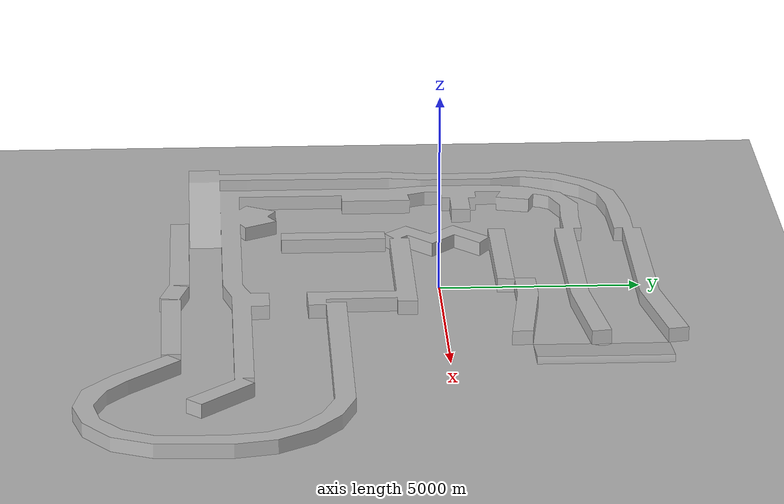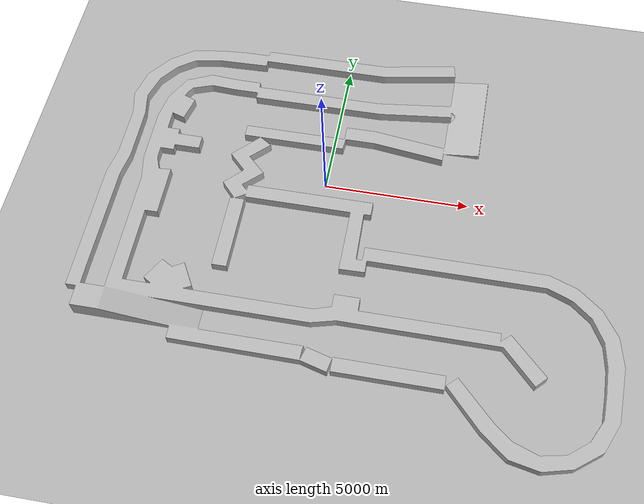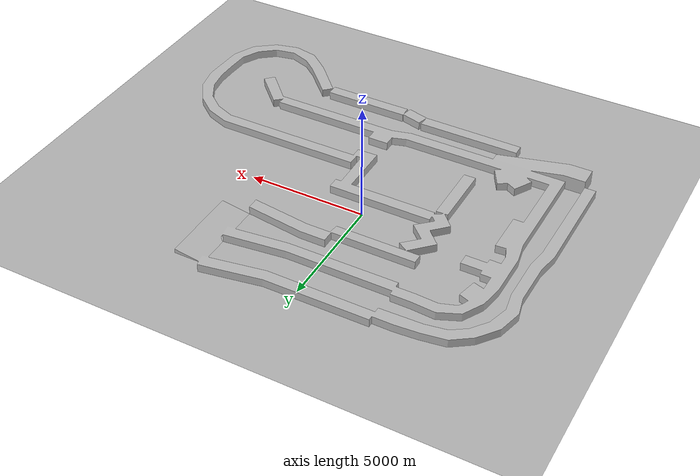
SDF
<?xml version="1.0" ?>
<!--
OnShape-based course world
Import your custom course geometry from OnShape here
-->
<sdf version="1.8">
  <world name="onshape_course">
    <physics type="ode">
      <max_step_size>0.001</max_step_size>
      <real_time_factor>1.0</real_time_factor>
      <ode>
        <solver>
          <type>quick</type>
          <iters>50</iters>
          <sor>1.3</sor>
        </solver>
        <constraints>
          <cfm>1e-5</cfm>
          <erp>0.2</erp>
        </constraints>
      </ode>
    </physics>

    <light name="sun" type="directional">
      <cast_shadows>true</cast_shadows>
      <pose>10 10 20 0 0 0</pose>
      <diffuse>0.8 0.8 0.8 1</diffuse>
      <specular>0.2 0.2 0.2 1</specular>
      <attenuation>
        <range>1000</range>
        <constant>0.9</constant>
        <linear>0.01</linear>
        <quadratic>0.001</quadratic>
      </attenuation>
      <direction>-0.5 0.1 -0.9</direction>
    </light>

    <!-- Ground Plane -->
    <model name="ground_plane">
      <static>true</static>
      <link name="link">
        <collision name="collision">
          <geometry>
            <plane>
              <normal>0 0 1</normal>
              <size>100 100</size>
            </plane>
          </geometry>
          <surface>
            <friction>
              <ode>
                <mu>0.7</mu>
                <mu2>0.7</mu2>
              </ode>
            </friction>
          </surface>
        </collision>
        <visual name="visual">
          <geometry>
            <plane>
              <normal>0 0 1</normal>
              <size>100 100</size>
            </plane>
          </geometry>
          <material>
            <ambient>0.7 0.7 0.7 1</ambient>
            <diffuse>0.7 0.7 0.7 1</diffuse>
          </material>
        </visual>
      </link>
    </model>

    <!-- Import OnShape course model -->
    <include>
      <uri>model://onshape_course</uri>
      <pose>0 0 0 0 0 0</pose>
    </include>
  </world>
</sdf>

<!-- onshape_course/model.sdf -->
<sdf version="1.8">
  <model name="onshape_course">
    <static>true</static>
    <link name="link">
      <visual name="visual">
        <geometry>
          <mesh>
            <!-- Update this path to match your STL filename -->
            <uri>model://onshape_course/meshes/course_layout.stl</uri>
            <scale>1.0 1.0 1.0</scale>
          </mesh>
        </geometry>
      </visual>
      <collision name="collision">
        <geometry>
          <mesh>
            <!-- Update this path to match your STL filename -->
            <uri>model://onshape_course/meshes/course_layout.stl</uri>
            <scale>1.0 1.0 1.0</scale>
          </mesh>
        </geometry>
      </collision>
    </link>
  </model>
</sdf>
